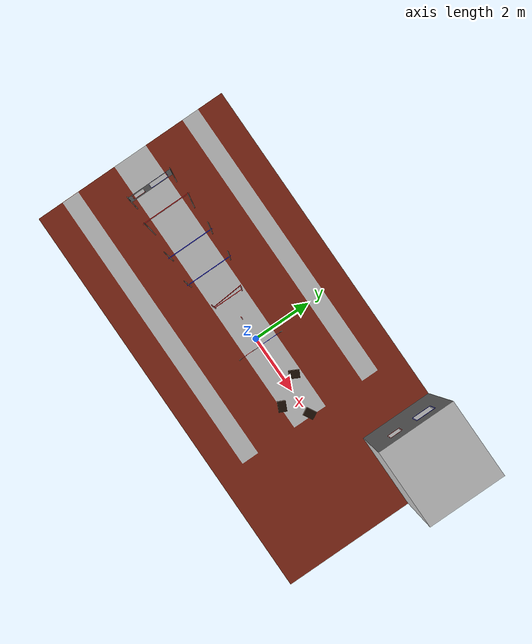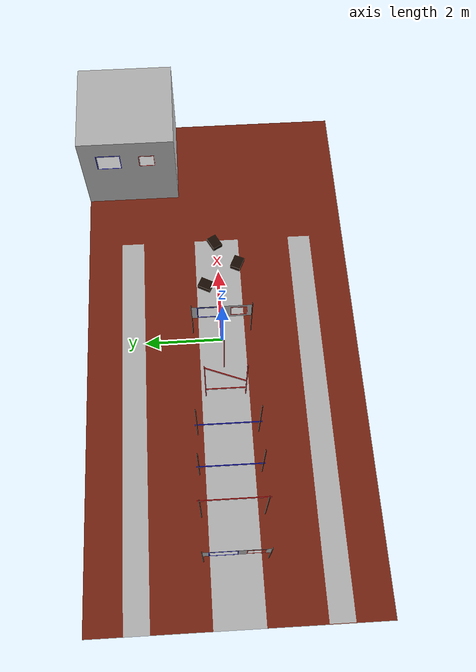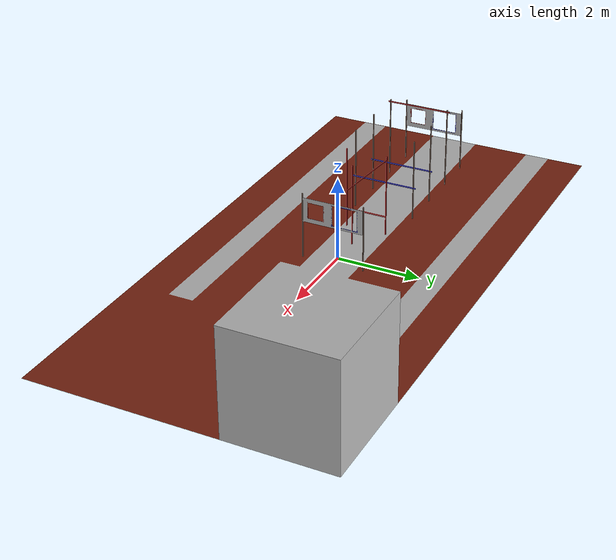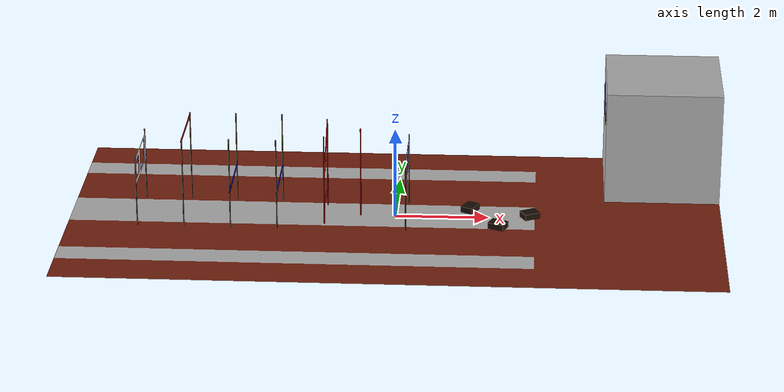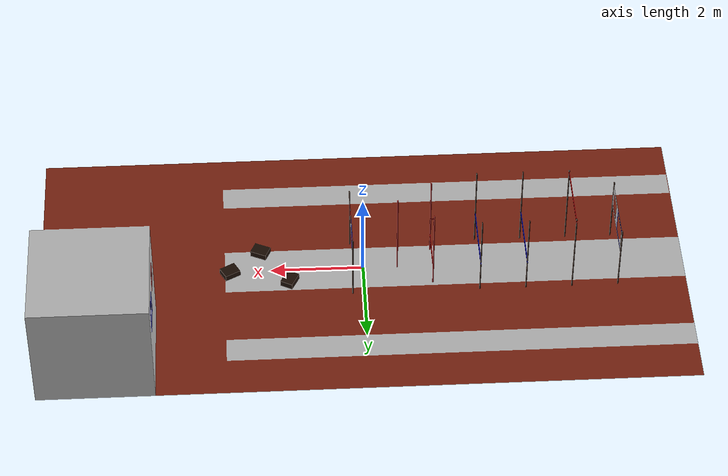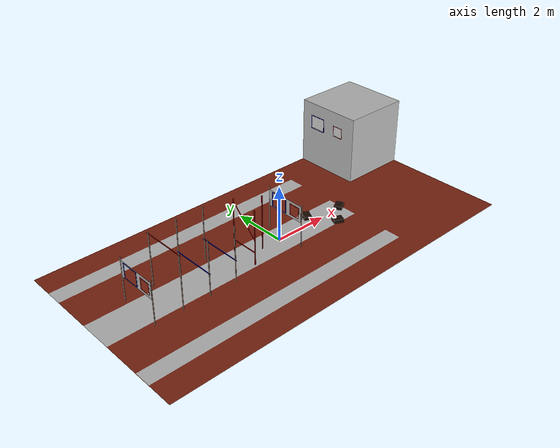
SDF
<?xml version="1.0" ?>
<sdf version="1.9">
  <world name="imav_scenery">
    <plugin filename="gz-sim-physics-system" name="gz::sim::systems::Physics"/>
    <plugin filename="gz-sim-user-commands-system" name="gz::sim::systems::UserCommands"/>
    <plugin filename="gz-sim-scene-broadcaster-system" name="gz::sim::systems::SceneBroadcaster"/>

    <scene>
      <ambient>0.7 0.7 0.7 1.0</ambient>
      <background>0.5 0.5 0.5 1.0</background>
      <shadows>true</shadows>
    </scene>

    <light type="directional" name="sun">
      <cast_shadows>true</cast_shadows>
      <pose>0 0 20 0 0 0</pose>
      <diffuse>0.8 0.8 0.8 1</diffuse>
      <specular>0.2 0.2 0.2 1</specular>
      <direction>0 0 -1</direction>
    </light>

    <include>
      <uri>model://imav</uri>
      <pose>0 0 0 0 0 0</pose>
    </include>
  </world>
</sdf>

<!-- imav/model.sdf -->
<sdf version="1.9">
  <model name="imav">
    <static>true</static>

    <link name="base_link">
      <collision name="floor_collision">
        <pose>0 0 -0.05 0 0 0</pose>
        <geometry>
          <box>
            <size>14 7 0.1</size>
          </box>
        </geometry>
      </collision>

      <visual name="visual">
        <geometry>
          <mesh>
            <uri>model://imav/meshes/all.dae</uri>
            <scale>1 1 1</scale>
          </mesh>
        </geometry>
      </visual>
    </link>
  </model>
</sdf>
